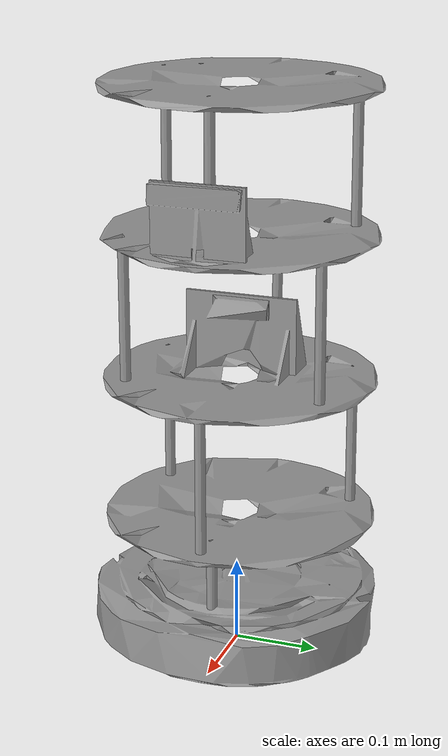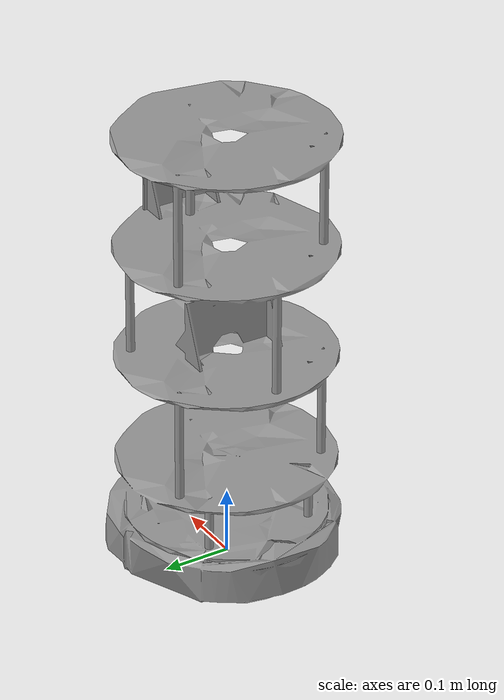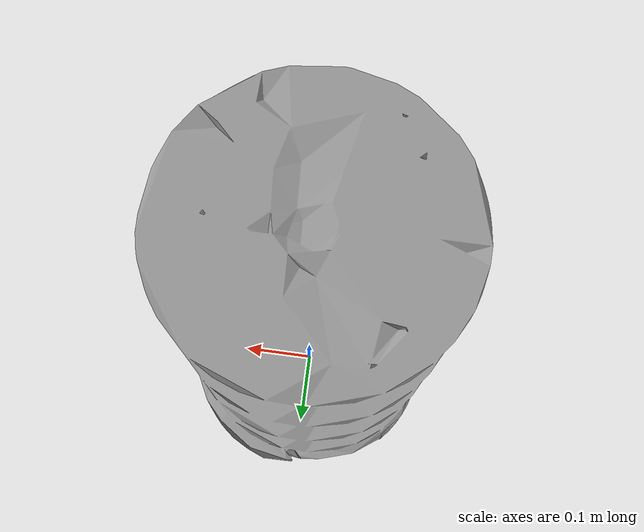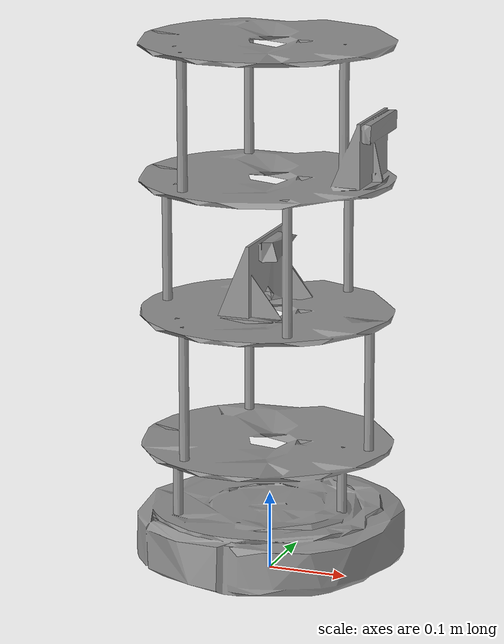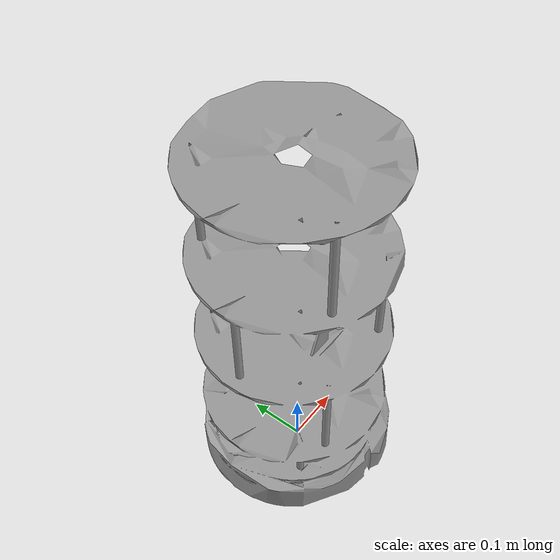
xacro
<?xml version="1.0" ?>
<robot name="create_2" xmlns:xacro="http://ros.org/wiki/xacro">

  <material name="Gray">
    <color rgba="${150/255} ${150/255} ${150/255} 1.0"/>
  </material>

  <link name="base_link">
    <visual>
      <origin rpy="1.5708 0 1.5708" xyz="0 0 0.34315"/>
      <geometry>
        <mesh filename="package://create_description/meshes/create_xl.stl" scale="0.001 0.001 0.001"/>
      </geometry>
      <material name="Gray"/>
    </visual>
  </link>

  <link name="left_wheel_link">
    <inertial>
      <origin xyz="0 0 0" />
      <mass value="0.01" />
      <inertia ixx="0.001" ixy="0.0" ixz="0.0" iyy="0.001" iyz="0.0" izz="0.001" />
    </inertial>
  </link>

  <joint name="left_wheel_joint" type="continuous">
    <origin xyz="0 0.1175 0.015" rpy="0 0 0" />
    <parent link="base_link" />
    <child link="left_wheel_link" />
    <axis xyz="0 1 0" />
  </joint>

  <link name="right_wheel_link">
    <inertial>
    <origin xyz="0 0 0" />
    <mass value="0.01" />
    <inertia ixx="0.001" ixy="0.0" ixz="0.0" iyy="0.001" iyz="0.0" izz="0.001" />
    </inertial>
  </link>

  <joint name="right_wheel_joint" type="continuous">
    <origin xyz="0 -0.1175 0.015" rpy="0 0 0" />
    <parent link="base_link" />
    <child link="right_wheel_link" />
    <axis xyz="0 1 0" />
  </joint>

</robot>
